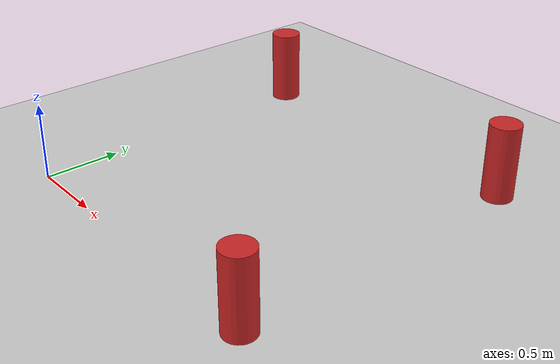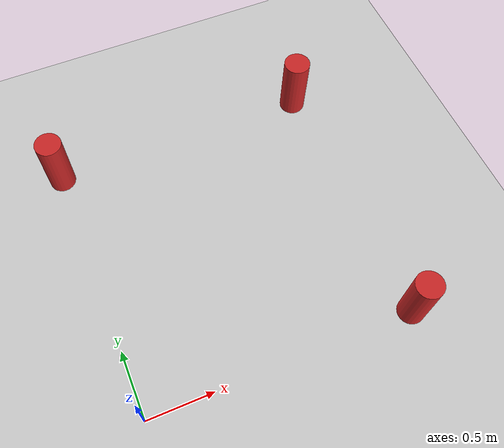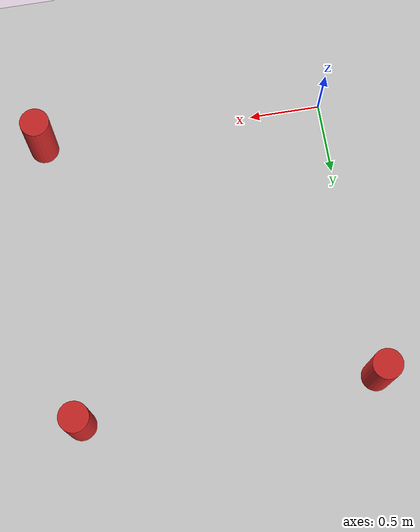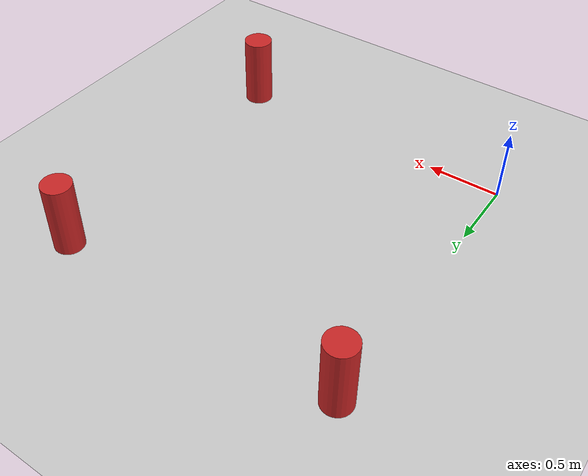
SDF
<?xml version="1.0" ?>
<sdf version="1.6">
  <world name="cone_world">
    <!-- Sun and Ground -->
    <include>
      <uri>model://sun</uri>
    </include>
    <include>
      <uri>model://ground_plane</uri>
    </include>

    <!-- Cone 1 (x=2, y=0) -->
    <model name="cone_1">
      <pose>2 0 0.25 0 0 0</pose>
      <static>true</static>
      <link name="link">
        <collision name="collision">
          <geometry>
            <cylinder>
              <radius>0.1</radius>
              <length>0.5</length>
            </cylinder>
          </geometry>
        </collision>
        <visual name="visual">
          <geometry>
            <cylinder>
              <radius>0.1</radius>
              <length>0.5</length>
            </cylinder>
          </geometry>
          <material>
            <script>
              <uri>file://media/materials/scripts/gazebo.material</uri>
              <name>Gazebo/Red</name>
            </script>
          </material>
        </visual>
      </link>
    </model>

    <!-- Cone 2 (x=2, y=2) -->
    <model name="cone_2">
      <pose>2 2 0.25 0 0 0</pose>
      <static>true</static>
      <link name="link">
        <collision name="collision">
          <geometry>
            <cylinder>
              <radius>0.1</radius>
              <length>0.5</length>
            </cylinder>
          </geometry>
        </collision>
        <visual name="visual">
          <geometry>
            <cylinder>
              <radius>0.1</radius>
              <length>0.5</length>
            </cylinder>
          </geometry>
          <material>
            <script>
              <uri>file://media/materials/scripts/gazebo.material</uri>
              <name>Gazebo/Red</name>
            </script>
          </material>
        </visual>
      </link>
    </model>

    <!-- Cone 3 (x=0, y=2) -->
    <model name="cone_3">
      <pose>0 2 0.25 0 0 0</pose>
      <static>true</static>
      <link name="link">
        <collision name="collision">
          <geometry>
            <cylinder>
              <radius>0.1</radius>
              <length>0.5</length>
            </cylinder>
          </geometry>
        </collision>
        <visual name="visual">
          <geometry>
            <cylinder>
              <radius>0.1</radius>
              <length>0.5</length>
            </cylinder>
          </geometry>
          <material>
            <script>
              <uri>file://media/materials/scripts/gazebo.material</uri>
              <name>Gazebo/Red</name>
            </script>
          </material>
        </visual>
      </link>
    </model>

    <!-- Cone 4 (x=0, y=0) - Origin marker (optional) -->
    <!-- Leaving origin clear for robot spawn -->

  </world>
</sdf>
